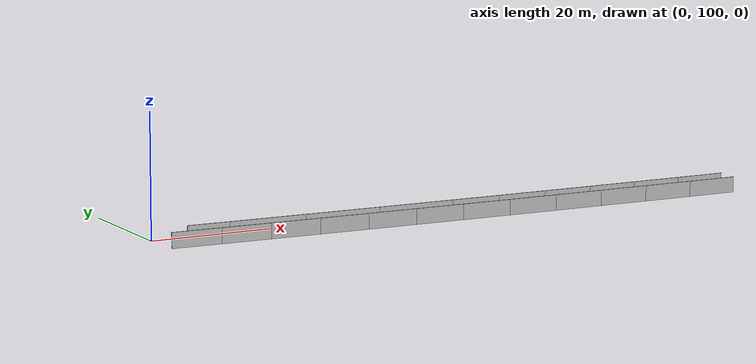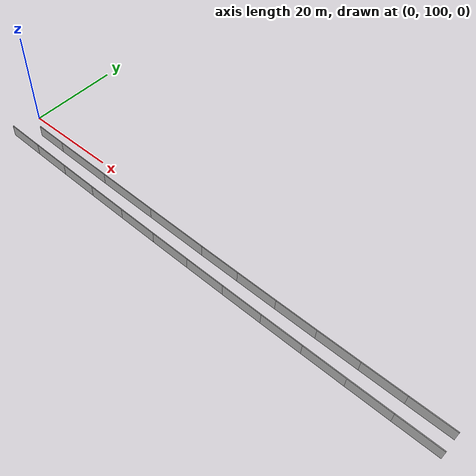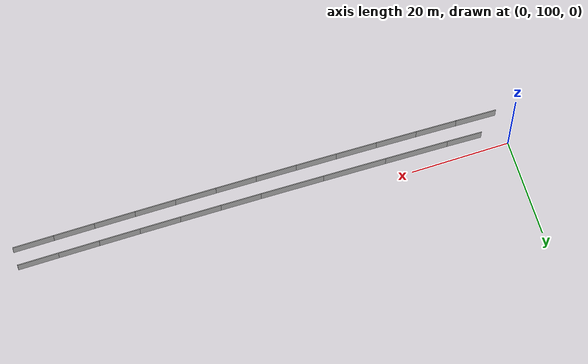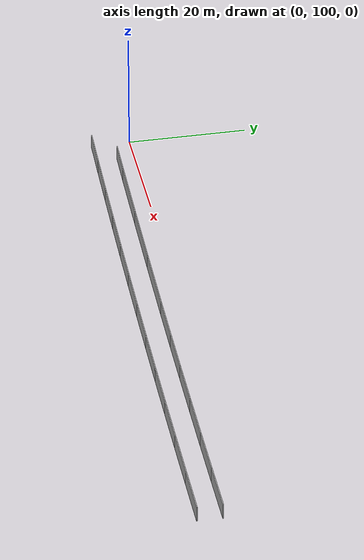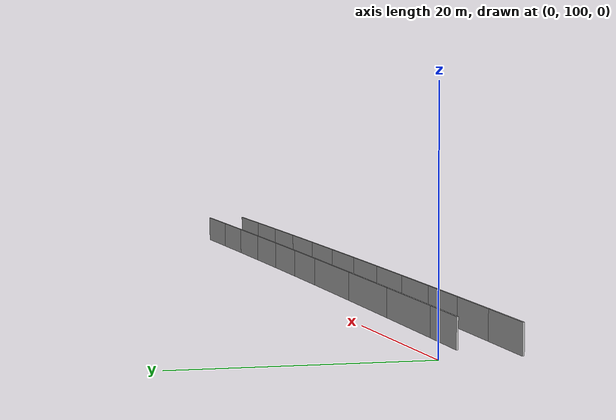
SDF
<?xml version="1.0" ?>
<sdf version="1.6">
  <model name="sps_2100">
    <pose frame="">0 0 0 0 -0 0</pose>
    <static>1</static>
    <self_collide>0</self_collide>
    <allow_auto_disable>0</allow_auto_disable>
    <link name="Wall2681">
      <kinematic>0</kinematic>
      <gravity>1</gravity>
      <self_collide>0</self_collide>
      <collision name="collision">
        <geometry>
          <box>
            <size>7.07608 0.15 2.5</size>
          </box>
        </geometry>
        <pose frame="">0 0 0 0 -0 0</pose>
      </collision>
      <visual name="visual">
        <geometry>
          <box>
            <size>7.07608 0.15 2.5</size>
          </box>
        </geometry>
        <pose frame="">0 0 0 0 -0 0</pose>
        <cast_shadows>1</cast_shadows>
        <transparency>0.0</transparency>
      </visual>
      <pose frame="">8.18514 96.9374 1.25 0 -0 3.11205</pose>
    </link>
    <link name="Wall8957">
      <kinematic>0</kinematic>
      <gravity>1</gravity>
      <self_collide>0</self_collide>
      <collision name="collision">
        <geometry>
          <box>
            <size>12.7911 0.15 2.5</size>
          </box>
        </geometry>
        <pose frame="">0 0 0 0 -0 0</pose>
      </collision>
      <visual name="visual">
        <geometry>
          <box>
            <size>12.7911 0.15 2.5</size>
          </box>
        </geometry>
        <pose frame="">0 0 0 0 -0 0</pose>
        <cast_shadows>1</cast_shadows>
        <transparency>0.0</transparency>
      </visual>
      <pose frame="">18.1153 96.6799 1.25 0 0 -0.0239276</pose>
    </link>
    <link name="Wall8958">
      <kinematic>0</kinematic>
      <gravity>1</gravity>
      <self_collide>0</self_collide>
      <collision name="collision">
        <geometry>
          <box>
            <size>12.7912 0.15 2.5</size>
          </box>
        </geometry>
        <pose frame="">0 0 0 0 -0 0</pose>
      </collision>
      <visual name="visual">
        <geometry>
          <box>
            <size>12.7912 0.15 2.5</size>
          </box>
        </geometry>
        <pose frame="">0 0 0 0 -0 0</pose>
        <cast_shadows>1</cast_shadows>
        <transparency>0.0</transparency>
      </visual>
      <pose frame="">30.9032 96.3889 1.25 0 0 -0.0215791</pose>
    </link>
    <link name="Wall8959">
      <kinematic>0</kinematic>
      <gravity>1</gravity>
      <self_collide>0</self_collide>
      <collision name="collision">
        <geometry>
          <box>
            <size>12.7912 0.15 2.5</size>
          </box>
        </geometry>
        <pose frame="">0 0 0 0 -0 0</pose>
      </collision>
      <visual name="visual">
        <geometry>
          <box>
            <size>12.7912 0.15 2.5</size>
          </box>
        </geometry>
        <pose frame="">0 0 0 0 -0 0</pose>
        <cast_shadows>1</cast_shadows>
        <transparency>0.0</transparency>
      </visual>
      <pose frame="">43.6917 96.1281 1.25 0 0 -0.0192023</pose>
    </link>
    <link name="Wall8960">
      <kinematic>0</kinematic>
      <gravity>1</gravity>
      <self_collide>0</self_collide>
      <collision name="collision">
        <geometry>
          <box>
            <size>8.25175 0.15 2.5</size>
          </box>
        </geometry>
        <pose frame="">0 0 0 0 -0 0</pose>
      </collision>
      <visual name="visual">
        <geometry>
          <box>
            <size>8.25175 0.15 2.5</size>
          </box>
        </geometry>
        <pose frame="">0 0 0 0 -0 0</pose>
        <cast_shadows>1</cast_shadows>
        <transparency>0.0</transparency>
      </visual>
      <pose frame="">54.2115 95.9425 1.25 0 0 -0.0152155</pose>
    </link>
    <link name="Wall8961">
      <kinematic>0</kinematic>
      <gravity>1</gravity>
      <self_collide>0</self_collide>
      <collision name="collision">
        <geometry>
          <box>
            <size>8.25185 0.15 2.5</size>
          </box>
        </geometry>
        <pose frame="">0 0 0 0 -0 0</pose>
      </collision>
      <visual name="visual">
        <geometry>
          <box>
            <size>8.25185 0.15 2.5</size>
          </box>
        </geometry>
        <pose frame="">0 0 0 0 -0 0</pose>
        <cast_shadows>1</cast_shadows>
        <transparency>0.0</transparency>
      </visual>
      <pose frame="">62.4625 95.8265 1.25 0 0 -0.0128999</pose>
    </link>
    <link name="Wall8962">
      <kinematic>0</kinematic>
      <gravity>1</gravity>
      <self_collide>0</self_collide>
      <collision name="collision">
        <geometry>
          <box>
            <size>8.25168 0.15 2.5</size>
          </box>
        </geometry>
        <pose frame="">0 0 0 0 -0 0</pose>
      </collision>
      <visual name="visual">
        <geometry>
          <box>
            <size>8.25168 0.15 2.5</size>
          </box>
        </geometry>
        <pose frame="">0 0 0 0 -0 0</pose>
        <cast_shadows>1</cast_shadows>
        <transparency>0.0</transparency>
      </visual>
      <pose frame="">70.7136 95.7299 1.25 0 0 -0.0105183</pose>
    </link>
    <link name="Wall8963">
      <kinematic>0</kinematic>
      <gravity>1</gravity>
      <self_collide>0</self_collide>
      <collision name="collision">
        <geometry>
          <box>
            <size>8.25186 0.15 2.5</size>
          </box>
        </geometry>
        <pose frame="">0 0 0 0 -0 0</pose>
      </collision>
      <visual name="visual">
        <geometry>
          <box>
            <size>8.25186 0.15 2.5</size>
          </box>
        </geometry>
        <pose frame="">0 0 0 0 -0 0</pose>
        <cast_shadows>1</cast_shadows>
        <transparency>0.0</transparency>
      </visual>
      <pose frame="">78.965 95.6529 1.25 0 0 -0.00814367</pose>
    </link>
    <link name="Wall8964">
      <kinematic>0</kinematic>
      <gravity>1</gravity>
      <self_collide>0</self_collide>
      <collision name="collision">
        <geometry>
          <box>
            <size>8.25173 0.15 2.5</size>
          </box>
        </geometry>
        <pose frame="">0 0 0 0 -0 0</pose>
      </collision>
      <visual name="visual">
        <geometry>
          <box>
            <size>8.25173 0.15 2.5</size>
          </box>
        </geometry>
        <pose frame="">0 0 0 0 -0 0</pose>
        <cast_shadows>1</cast_shadows>
        <transparency>0.0</transparency>
      </visual>
      <pose frame="">87.2166 95.5953 1.25 0 0 -0.0058138</pose>
    </link>
    <link name="Wall8965">
      <kinematic>0</kinematic>
      <gravity>1</gravity>
      <self_collide>0</self_collide>
      <collision name="collision">
        <geometry>
          <box>
            <size>8.25188 0.15 2.5</size>
          </box>
        </geometry>
        <pose frame="">0 0 0 0 -0 0</pose>
      </collision>
      <visual name="visual">
        <geometry>
          <box>
            <size>8.25188 0.15 2.5</size>
          </box>
        </geometry>
        <pose frame="">0 0 0 0 -0 0</pose>
        <cast_shadows>1</cast_shadows>
        <transparency>0.0</transparency>
      </visual>
      <pose frame="">95.4683 95.5572 1.25 0 0 -0.0034172</pose>
    </link>
    <link name="Wall9045">
      <kinematic>0</kinematic>
      <gravity>1</gravity>
      <self_collide>0</self_collide>
      <collision name="collision">
        <geometry>
          <box>
            <size>8.26182 0.15 2.5</size>
          </box>
        </geometry>
        <pose frame="">0 0 0 0 -0 0</pose>
      </collision>
      <visual name="visual">
        <geometry>
          <box>
            <size>8.26182 0.15 2.5</size>
          </box>
        </geometry>
        <pose frame="">0 0 0 0 -0 0</pose>
        <cast_shadows>1</cast_shadows>
        <transparency>0.0</transparency>
      </visual>
      <pose frame="">4.50896 93.2961 1.25 0 0 -0.0294365</pose>
    </link>
    <link name="Wall9046">
      <kinematic>0</kinematic>
      <gravity>1</gravity>
      <self_collide>0</self_collide>
      <collision name="collision">
        <geometry>
          <box>
            <size>8.26182 0.15 2.5</size>
          </box>
        </geometry>
        <pose frame="">0 0 0 0 -0 0</pose>
      </collision>
      <visual name="visual">
        <geometry>
          <box>
            <size>8.26182 0.15 2.5</size>
          </box>
        </geometry>
        <pose frame="">0 0 0 0 -0 0</pose>
        <cast_shadows>1</cast_shadows>
        <transparency>0.0</transparency>
      </visual>
      <pose frame="">12.7675 93.0626 1.25 0 0 -0.0270937</pose>
    </link>
    <link name="Wall9047">
      <kinematic>0</kinematic>
      <gravity>1</gravity>
      <self_collide>0</self_collide>
      <collision name="collision">
        <geometry>
          <box>
            <size>8.26168 0.15 2.5</size>
          </box>
        </geometry>
        <pose frame="">0 0 0 0 -0 0</pose>
      </collision>
      <visual name="visual">
        <geometry>
          <box>
            <size>8.26168 0.15 2.5</size>
          </box>
        </geometry>
        <pose frame="">0 0 0 0 -0 0</pose>
        <cast_shadows>1</cast_shadows>
        <transparency>0.0</transparency>
      </visual>
      <pose frame="">21.0265 92.8486 1.25 0 0 -0.0247219</pose>
    </link>
    <link name="Wall9048">
      <kinematic>0</kinematic>
      <gravity>1</gravity>
      <self_collide>0</self_collide>
      <collision name="collision">
        <geometry>
          <box>
            <size>8.26189 0.15 2.5</size>
          </box>
        </geometry>
        <pose frame="">0 0 0 0 -0 0</pose>
      </collision>
      <visual name="visual">
        <geometry>
          <box>
            <size>8.26189 0.15 2.5</size>
          </box>
        </geometry>
        <pose frame="">0 0 0 0 -0 0</pose>
        <cast_shadows>1</cast_shadows>
        <transparency>0.0</transparency>
      </visual>
      <pose frame="">29.2859 92.6541 1.25 0 0 -0.022364</pose>
    </link>
    <link name="Wall9049">
      <kinematic>0</kinematic>
      <gravity>1</gravity>
      <self_collide>0</self_collide>
      <collision name="collision">
        <geometry>
          <box>
            <size>8.26185 0.15 2.5</size>
          </box>
        </geometry>
        <pose frame="">0 0 0 0 -0 0</pose>
      </collision>
      <visual name="visual">
        <geometry>
          <box>
            <size>8.26185 0.15 2.5</size>
          </box>
        </geometry>
        <pose frame="">0 0 0 0 -0 0</pose>
        <cast_shadows>1</cast_shadows>
        <transparency>0.0</transparency>
      </visual>
      <pose frame="">37.546 92.4791 1.25 0 0 -0.0199995</pose>
    </link>
    <link name="Wall9050">
      <kinematic>0</kinematic>
      <gravity>1</gravity>
      <self_collide>0</self_collide>
      <collision name="collision">
        <geometry>
          <box>
            <size>8.26172 0.15 2.5</size>
          </box>
        </geometry>
        <pose frame="">0 0 0 0 -0 0</pose>
      </collision>
      <visual name="visual">
        <geometry>
          <box>
            <size>8.26172 0.15 2.5</size>
          </box>
        </geometry>
        <pose frame="">0 0 0 0 -0 0</pose>
        <cast_shadows>1</cast_shadows>
        <transparency>0.0</transparency>
      </visual>
      <pose frame="">45.8063 92.3236 1.25 0 0 -0.0176501</pose>
    </link>
    <link name="Wall9051">
      <kinematic>0</kinematic>
      <gravity>1</gravity>
      <self_collide>0</self_collide>
      <collision name="collision">
        <geometry>
          <box>
            <size>8.26171 0.15 2.5</size>
          </box>
        </geometry>
        <pose frame="">0 0 0 0 -0 0</pose>
      </collision>
      <visual name="visual">
        <geometry>
          <box>
            <size>8.26171 0.15 2.5</size>
          </box>
        </geometry>
        <pose frame="">0 0 0 0 -0 0</pose>
        <cast_shadows>1</cast_shadows>
        <transparency>0.0</transparency>
      </visual>
      <pose frame="">54.0669 92.1876 1.25 0 0 -0.0152784</pose>
    </link>
    <link name="Wall9052">
      <kinematic>0</kinematic>
      <gravity>1</gravity>
      <self_collide>0</self_collide>
      <collision name="collision">
        <geometry>
          <box>
            <size>8.26192 0.15 2.5</size>
          </box>
        </geometry>
        <pose frame="">0 0 0 0 -0 0</pose>
      </collision>
      <visual name="visual">
        <geometry>
          <box>
            <size>8.26192 0.15 2.5</size>
          </box>
        </geometry>
        <pose frame="">0 0 0 0 -0 0</pose>
        <cast_shadows>1</cast_shadows>
        <transparency>0.0</transparency>
      </visual>
      <pose frame="">62.3278 92.0712 1.25 0 0 -0.012899</pose>
    </link>
    <link name="Wall9053">
      <kinematic>0</kinematic>
      <gravity>1</gravity>
      <self_collide>0</self_collide>
      <collision name="collision">
        <geometry>
          <box>
            <size>8.26187 0.15 2.5</size>
          </box>
        </geometry>
        <pose frame="">0 0 0 0 -0 0</pose>
      </collision>
      <visual name="visual">
        <geometry>
          <box>
            <size>8.26187 0.15 2.5</size>
          </box>
        </geometry>
        <pose frame="">0 0 0 0 -0 0</pose>
        <cast_shadows>1</cast_shadows>
        <transparency>0.0</transparency>
      </visual>
      <pose frame="">70.5892 91.9743 1.25 0 0 -0.010557</pose>
    </link>
    <link name="Wall9054">
      <kinematic>0</kinematic>
      <gravity>1</gravity>
      <self_collide>0</self_collide>
      <collision name="collision">
        <geometry>
          <box>
            <size>8.26169 0.15 2.5</size>
          </box>
        </geometry>
        <pose frame="">0 0 0 0 -0 0</pose>
      </collision>
      <visual name="visual">
        <geometry>
          <box>
            <size>8.26169 0.15 2.5</size>
          </box>
        </geometry>
        <pose frame="">0 0 0 0 -0 0</pose>
        <cast_shadows>1</cast_shadows>
        <transparency>0.0</transparency>
      </visual>
      <pose frame="">78.8506 91.8969 1.25 0 0 -0.00817831</pose>
    </link>
    <link name="Wall9055">
      <kinematic>0</kinematic>
      <gravity>1</gravity>
      <self_collide>0</self_collide>
      <collision name="collision">
        <geometry>
          <box>
            <size>8.26174 0.15 2.5</size>
          </box>
        </geometry>
        <pose frame="">0 0 0 0 -0 0</pose>
      </collision>
      <visual name="visual">
        <geometry>
          <box>
            <size>8.26174 0.15 2.5</size>
          </box>
        </geometry>
        <pose frame="">0 0 0 0 -0 0</pose>
        <cast_shadows>1</cast_shadows>
        <transparency>0.0</transparency>
      </visual>
      <pose frame="">87.1121 91.8391 1.25 0 0 -0.00581415</pose>
    </link>
    <link name="Wall9056">
      <kinematic>0</kinematic>
      <gravity>1</gravity>
      <self_collide>0</self_collide>
      <collision name="collision">
        <geometry>
          <box>
            <size>8.26183 0.15 2.5</size>
          </box>
        </geometry>
        <pose frame="">0 0 0 0 -0 0</pose>
      </collision>
      <visual name="visual">
        <geometry>
          <box>
            <size>8.26183 0.15 2.5</size>
          </box>
        </geometry>
        <pose frame="">0 0 0 0 -0 0</pose>
        <cast_shadows>1</cast_shadows>
        <transparency>0.0</transparency>
      </visual>
      <pose frame="">95.3738 91.8008 1.25 0 0 -0.00345741</pose>
    </link>
  </model>
</sdf>
